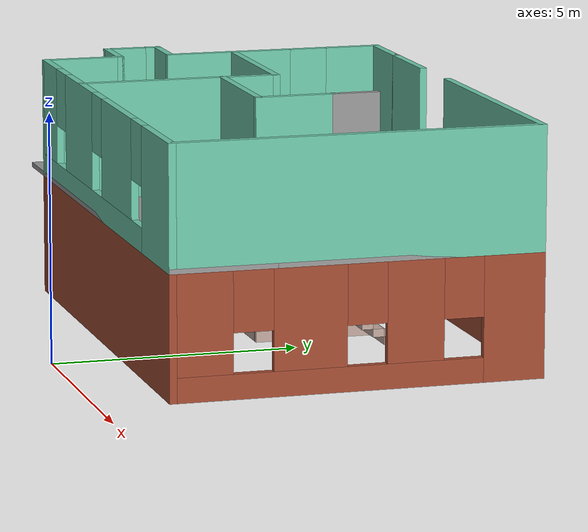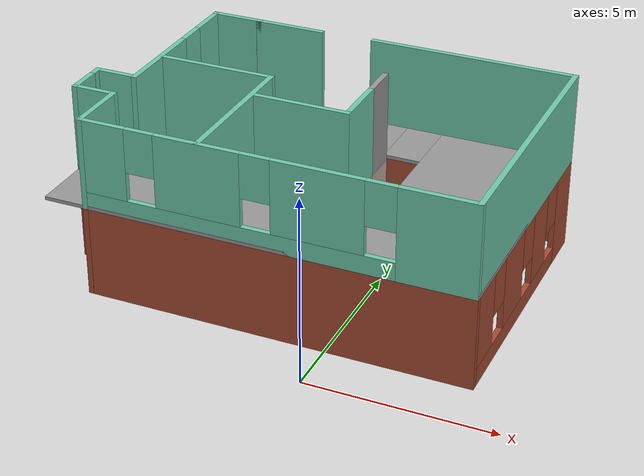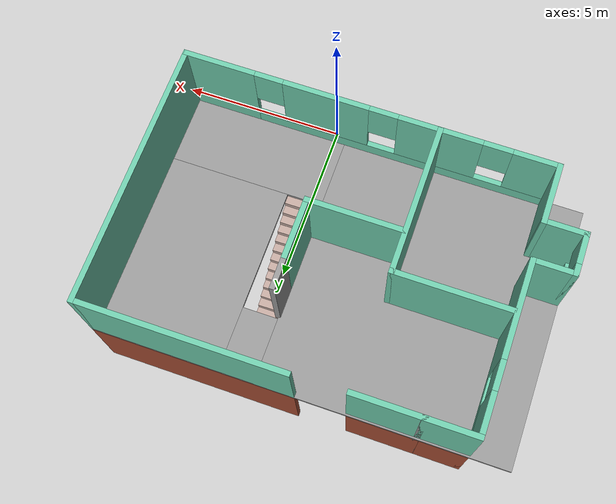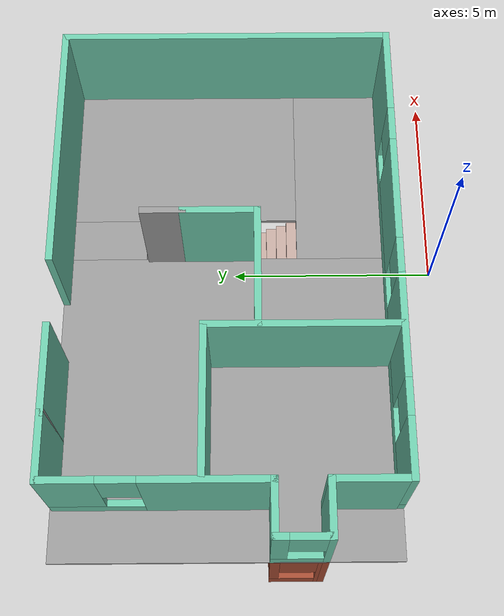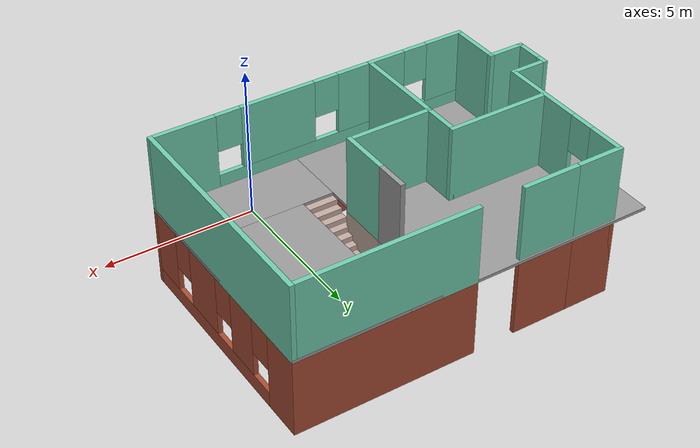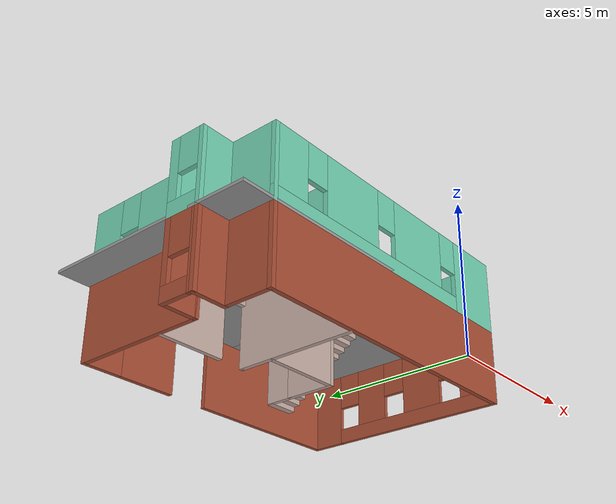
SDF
<?xml version='1.0'?>
<sdf version='1.6'>
  <model name='Building'>
    <pose frame=''>-1.94301 5.12854 0 0 -0 0</pose>
    <link name='Floor_0'>
      <pose frame=''>0 0 2.5 0 -0 0</pose>
      <visual name='Floor_0_Visual_0'>
        <pose frame=''>-2.30226 0 0.05 0 -0 0</pose>
        <geometry>
          <box>
            <size>6.99548 7.5 0.1</size>
          </box>
        </geometry>
        <material>
          <script>
            <uri>file://media/materials/scripts/gazebo.material</uri>
            <name>Gazebo/Grey</name>
          </script>
          <ambient>1 1 1 1</ambient>
        </material>
        <meta>
          <layer>1</layer>
        </meta>
      </visual>
      <collision name='Floor_0_Collision_0'>
        <geometry>
          <box>
            <size>6.99548 7.5 0.1</size>
          </box>
        </geometry>
        <pose frame=''>-2.30226 0 0.05 0 -0 0</pose>
      </collision>
      <visual name='Floor_0_Visual_1'>
        <pose frame=''>3.49774 -2.68126 0.05 0 -0 0</pose>
        <geometry>
          <box>
            <size>4.60452 2.13747 0.1</size>
          </box>
        </geometry>
        <material>
          <script>
            <uri>file://media/materials/scripts/gazebo.material</uri>
            <name>Gazebo/Grey</name>
          </script>
          <ambient>1 1 1 1</ambient>
        </material>
        <meta>
          <layer>1</layer>
        </meta>
      </visual>
      <collision name='Floor_0_Collision_1'>
        <geometry>
          <box>
            <size>4.60452 2.13747 0.1</size>
          </box>
        </geometry>
        <pose frame=''>3.49774 -2.68126 0.05 0 -0 0</pose>
      </collision>
      <visual name='Floor_0_Visual_2'>
        <pose frame=''>3.99774 1.06874 0.05 0 -0 0</pose>
        <geometry>
          <box>
            <size>3.60452 5.36253 0.1</size>
          </box>
        </geometry>
        <material>
          <script>
            <uri>file://media/materials/scripts/gazebo.material</uri>
            <name>Gazebo/Grey</name>
          </script>
          <ambient>1 1 1 1</ambient>
        </material>
        <meta>
          <layer>1</layer>
        </meta>
      </visual>
      <collision name='Floor_0_Collision_2'>
        <geometry>
          <box>
            <size>3.60452 5.36253 0.1</size>
          </box>
        </geometry>
        <pose frame=''>3.99774 1.06874 0.05 0 -0 0</pose>
      </collision>
      <visual name='Floor_0_Visual_3'>
        <pose frame=''>1.69548 2.81874 0.05 0 -0 0</pose>
        <geometry>
          <box>
            <size>1 1.86253 0.1</size>
          </box>
        </geometry>
        <material>
          <script>
            <uri>file://media/materials/scripts/gazebo.material</uri>
            <name>Gazebo/Grey</name>
          </script>
          <ambient>1 1 1 1</ambient>
        </material>
        <meta>
          <layer>1</layer>
        </meta>
      </visual>
      <collision name='Floor_0_Collision_3'>
        <geometry>
          <box>
            <size>1 1.86253 0.1</size>
          </box>
        </geometry>
        <pose frame=''>1.69548 2.81874 0.05 0 -0 0</pose>
      </collision>
    </link>
    <link name='Stairs_1'>
      <visual name='Stairs_1_Visual_0'>
        <pose frame=''>1.69548 1.7708 0.083333 0 -0 0</pose>
        <geometry>
          <box>
            <size>1 0.233333 0.166667</size>
          </box>
        </geometry>
        <material>
          <script>
            <uri>file://media/materials/scripts/gazebo.material</uri>
            <name>Gazebo/Grey</name>
          </script>
          <ambient>0.760784 0.662745 0.627451 1</ambient>
        </material>
        <meta>
          <layer>0</layer>
        </meta>
      </visual>
      <collision name='Stairs_1_Collision_0'>
        <geometry>
          <box>
            <size>1 0.233333 0.166667</size>
          </box>
        </geometry>
        <pose frame=''>1.69548 1.7708 0.083333 0 -0 0</pose>
      </collision>
      <visual name='Stairs_1_Visual_1'>
        <pose frame=''>1.69548 1.53747 0.25 0 -0 0</pose>
        <geometry>
          <box>
            <size>1 0.233333 0.166667</size>
          </box>
        </geometry>
        <material>
          <script>
            <uri>file://media/materials/scripts/gazebo.material</uri>
            <name>Gazebo/Grey</name>
          </script>
          <ambient>0.760784 0.662745 0.627451 1</ambient>
        </material>
        <meta>
          <layer>0</layer>
        </meta>
      </visual>
      <collision name='Stairs_1_Collision_1'>
        <geometry>
          <box>
            <size>1 0.233333 0.166667</size>
          </box>
        </geometry>
        <pose frame=''>1.69548 1.53747 0.25 0 -0 0</pose>
      </collision>
      <visual name='Stairs_1_Visual_2'>
        <pose frame=''>1.69548 1.30414 0.416667 0 -0 0</pose>
        <geometry>
          <box>
            <size>1 0.233333 0.166667</size>
          </box>
        </geometry>
        <material>
          <script>
            <uri>file://media/materials/scripts/gazebo.material</uri>
            <name>Gazebo/Grey</name>
          </script>
          <ambient>0.760784 0.662745 0.627451 1</ambient>
        </material>
        <meta>
          <layer>0</layer>
        </meta>
      </visual>
      <collision name='Stairs_1_Collision_2'>
        <geometry>
          <box>
            <size>1 0.233333 0.166667</size>
          </box>
        </geometry>
        <pose frame=''>1.69548 1.30414 0.416667 0 -0 0</pose>
      </collision>
      <visual name='Stairs_1_Visual_3'>
        <pose frame=''>1.69548 1.07081 0.583333 0 -0 0</pose>
        <geometry>
          <box>
            <size>1 0.233333 0.166667</size>
          </box>
        </geometry>
        <material>
          <script>
            <uri>file://media/materials/scripts/gazebo.material</uri>
            <name>Gazebo/Grey</name>
          </script>
          <ambient>0.760784 0.662745 0.627451 1</ambient>
        </material>
        <meta>
          <layer>0</layer>
        </meta>
      </visual>
      <collision name='Stairs_1_Collision_3'>
        <geometry>
          <box>
            <size>1 0.233333 0.166667</size>
          </box>
        </geometry>
        <pose frame=''>1.69548 1.07081 0.583333 0 -0 0</pose>
      </collision>
      <visual name='Stairs_1_Visual_4'>
        <pose frame=''>1.69548 0.837472 0.75 0 -0 0</pose>
        <geometry>
          <box>
            <size>1 0.233333 0.166667</size>
          </box>
        </geometry>
        <material>
          <script>
            <uri>file://media/materials/scripts/gazebo.material</uri>
            <name>Gazebo/Grey</name>
          </script>
          <ambient>0.760784 0.662745 0.627451 1</ambient>
        </material>
        <meta>
          <layer>0</layer>
        </meta>
      </visual>
      <collision name='Stairs_1_Collision_4'>
        <geometry>
          <box>
            <size>1 0.233333 0.166667</size>
          </box>
        </geometry>
        <pose frame=''>1.69548 0.837472 0.75 0 -0 0</pose>
      </collision>
      <visual name='Stairs_1_Visual_5'>
        <pose frame=''>1.69548 0.604139 0.916667 0 -0 0</pose>
        <geometry>
          <box>
            <size>1 0.233333 0.166667</size>
          </box>
        </geometry>
        <material>
          <script>
            <uri>file://media/materials/scripts/gazebo.material</uri>
            <name>Gazebo/Grey</name>
          </script>
          <ambient>0.760784 0.662745 0.627451 1</ambient>
        </material>
        <meta>
          <layer>0</layer>
        </meta>
      </visual>
      <collision name='Stairs_1_Collision_5'>
        <geometry>
          <box>
            <size>1 0.233333 0.166667</size>
          </box>
        </geometry>
        <pose frame=''>1.69548 0.604139 0.916667 0 -0 0</pose>
      </collision>
      <visual name='Stairs_1_Visual_6'>
        <pose frame=''>1.69548 0.370805 1.08333 0 -0 0</pose>
        <geometry>
          <box>
            <size>1 0.233333 0.166667</size>
          </box>
        </geometry>
        <material>
          <script>
            <uri>file://media/materials/scripts/gazebo.material</uri>
            <name>Gazebo/Grey</name>
          </script>
          <ambient>0.760784 0.662745 0.627451 1</ambient>
        </material>
        <meta>
          <layer>0</layer>
        </meta>
      </visual>
      <collision name='Stairs_1_Collision_6'>
        <geometry>
          <box>
            <size>1 0.233333 0.166667</size>
          </box>
        </geometry>
        <pose frame=''>1.69548 0.370805 1.08333 0 -0 0</pose>
      </collision>
      <visual name='Stairs_1_Visual_7'>
        <pose frame=''>1.69548 0.137472 1.25 0 -0 0</pose>
        <geometry>
          <box>
            <size>1 0.233333 0.166667</size>
          </box>
        </geometry>
        <material>
          <script>
            <uri>file://media/materials/scripts/gazebo.material</uri>
            <name>Gazebo/Grey</name>
          </script>
          <ambient>0.760784 0.662745 0.627451 1</ambient>
        </material>
        <meta>
          <layer>0</layer>
        </meta>
      </visual>
      <collision name='Stairs_1_Collision_7'>
        <geometry>
          <box>
            <size>1 0.233333 0.166667</size>
          </box>
        </geometry>
        <pose frame=''>1.69548 0.137472 1.25 0 -0 0</pose>
      </collision>
      <visual name='Stairs_1_Visual_8'>
        <pose frame=''>1.69548 -0.095861 1.41667 0 -0 0</pose>
        <geometry>
          <box>
            <size>1 0.233333 0.166667</size>
          </box>
        </geometry>
        <material>
          <script>
            <uri>file://media/materials/scripts/gazebo.material</uri>
            <name>Gazebo/Grey</name>
          </script>
          <ambient>0.760784 0.662745 0.627451 1</ambient>
        </material>
        <meta>
          <layer>0</layer>
        </meta>
      </visual>
      <collision name='Stairs_1_Collision_8'>
        <geometry>
          <box>
            <size>1 0.233333 0.166667</size>
          </box>
        </geometry>
        <pose frame=''>1.69548 -0.095861 1.41667 0 -0 0</pose>
      </collision>
      <visual name='Stairs_1_Visual_9'>
        <pose frame=''>1.69548 -0.329195 1.58333 0 -0 0</pose>
        <geometry>
          <box>
            <size>1 0.233333 0.166667</size>
          </box>
        </geometry>
        <material>
          <script>
            <uri>file://media/materials/scripts/gazebo.material</uri>
            <name>Gazebo/Grey</name>
          </script>
          <ambient>0.760784 0.662745 0.627451 1</ambient>
        </material>
        <meta>
          <layer>0</layer>
        </meta>
      </visual>
      <collision name='Stairs_1_Collision_9'>
        <geometry>
          <box>
            <size>1 0.233333 0.166667</size>
          </box>
        </geometry>
        <pose frame=''>1.69548 -0.329195 1.58333 0 -0 0</pose>
      </collision>
      <visual name='Stairs_1_Visual_10'>
        <pose frame=''>1.69548 -0.562528 1.75 0 -0 0</pose>
        <geometry>
          <box>
            <size>1 0.233333 0.166667</size>
          </box>
        </geometry>
        <material>
          <script>
            <uri>file://media/materials/scripts/gazebo.material</uri>
            <name>Gazebo/Grey</name>
          </script>
          <ambient>0.760784 0.662745 0.627451 1</ambient>
        </material>
        <meta>
          <layer>0</layer>
        </meta>
      </visual>
      <collision name='Stairs_1_Collision_10'>
        <geometry>
          <box>
            <size>1 0.233333 0.166667</size>
          </box>
        </geometry>
        <pose frame=''>1.69548 -0.562528 1.75 0 -0 0</pose>
      </collision>
      <visual name='Stairs_1_Visual_11'>
        <pose frame=''>1.69548 -0.795861 1.91667 0 -0 0</pose>
        <geometry>
          <box>
            <size>1 0.233333 0.166667</size>
          </box>
        </geometry>
        <material>
          <script>
            <uri>file://media/materials/scripts/gazebo.material</uri>
            <name>Gazebo/Grey</name>
          </script>
          <ambient>0.760784 0.662745 0.627451 1</ambient>
        </material>
        <meta>
          <layer>0</layer>
        </meta>
      </visual>
      <collision name='Stairs_1_Collision_11'>
        <geometry>
          <box>
            <size>1 0.233333 0.166667</size>
          </box>
        </geometry>
        <pose frame=''>1.69548 -0.795861 1.91667 0 -0 0</pose>
      </collision>
      <visual name='Stairs_1_Visual_12'>
        <pose frame=''>1.69548 -1.02919 2.08333 0 -0 0</pose>
        <geometry>
          <box>
            <size>1 0.233333 0.166667</size>
          </box>
        </geometry>
        <material>
          <script>
            <uri>file://media/materials/scripts/gazebo.material</uri>
            <name>Gazebo/Grey</name>
          </script>
          <ambient>0.760784 0.662745 0.627451 1</ambient>
        </material>
        <meta>
          <layer>0</layer>
        </meta>
      </visual>
      <collision name='Stairs_1_Collision_12'>
        <geometry>
          <box>
            <size>1 0.233333 0.166667</size>
          </box>
        </geometry>
        <pose frame=''>1.69548 -1.02919 2.08333 0 -0 0</pose>
      </collision>
      <visual name='Stairs_1_Visual_13'>
        <pose frame=''>1.69548 -1.26253 2.25 0 -0 0</pose>
        <geometry>
          <box>
            <size>1 0.233333 0.166667</size>
          </box>
        </geometry>
        <material>
          <script>
            <uri>file://media/materials/scripts/gazebo.material</uri>
            <name>Gazebo/Grey</name>
          </script>
          <ambient>0.760784 0.662745 0.627451 1</ambient>
        </material>
        <meta>
          <layer>0</layer>
        </meta>
      </visual>
      <collision name='Stairs_1_Collision_13'>
        <geometry>
          <box>
            <size>1 0.233333 0.166667</size>
          </box>
        </geometry>
        <pose frame=''>1.69548 -1.26253 2.25 0 -0 0</pose>
      </collision>
      <visual name='Stairs_1_Visual_14'>
        <pose frame=''>1.69548 -1.49586 2.41667 0 -0 0</pose>
        <geometry>
          <box>
            <size>1 0.233333 0.166667</size>
          </box>
        </geometry>
        <material>
          <script>
            <uri>file://media/materials/scripts/gazebo.material</uri>
            <name>Gazebo/Grey</name>
          </script>
          <ambient>0.760784 0.662745 0.627451 1</ambient>
        </material>
        <meta>
          <layer>0</layer>
        </meta>
      </visual>
      <collision name='Stairs_1_Collision_14'>
        <geometry>
          <box>
            <size>1 0.233333 0.166667</size>
          </box>
        </geometry>
        <pose frame=''>1.69548 -1.49586 2.41667 0 -0 0</pose>
      </collision>
    </link>
    <link name='Wall_22'>
      <collision name='Wall_22_Collision'>
        <geometry>
          <box>
            <size>5.75 0.15 2.5</size>
          </box>
        </geometry>
        <pose frame=''>0 0 1.25 0 -0 0</pose>
      </collision>
      <visual name='Wall_22_Visual'>
        <pose frame=''>0 0 1.25 0 -0 0</pose>
        <geometry>
          <box>
            <size>5.75 0.15 2.5</size>
          </box>
        </geometry>
        <material>
          <script>
            <uri>file://media/materials/scripts/gazebo.material</uri>
            <name>Gazebo/Bricks</name>
          </script>
          <ambient>1 1 1 1</ambient>
        </material>
        <meta>
          <layer>0</layer>
        </meta>
      </visual>
      <pose frame=''>2.925 3.675 0 0 -0 0</pose>
    </link>
    <link name='Wall_23'>
      <pose frame=''>5.725 0 0 0 0 -1.5708</pose>
      <visual name='Wall_23_Visual_0'>
        <pose frame=''>-3.12794 0 1.25 0 -0 0</pose>
        <geometry>
          <box>
            <size>1.24411 0.15 2.5</size>
          </box>
        </geometry>
        <material>
          <script>
            <uri>file://media/materials/scripts/gazebo.material</uri>
            <name>Gazebo/Bricks</name>
          </script>
          <ambient>1 1 1 1</ambient>
        </material>
        <meta>
          <layer>0</layer>
        </meta>
      </visual>
      <collision name='Wall_23_Collision_0'>
        <geometry>
          <box>
            <size>1.24411 0.15 2.5</size>
          </box>
        </geometry>
        <pose frame=''>-3.12794 0 1.25 0 -0 0</pose>
      </collision>
      <visual name='Wall_23_Visual_1'>
        <pose frame=''>0.622057 0 0.25 0 -0 0</pose>
        <geometry>
          <box>
            <size>6.25589 0.15 0.5</size>
          </box>
        </geometry>
        <material>
          <script>
            <uri>file://media/materials/scripts/gazebo.material</uri>
            <name>Gazebo/Bricks</name>
          </script>
          <ambient>1 1 1 1</ambient>
        </material>
        <meta>
          <layer>0</layer>
        </meta>
      </visual>
      <collision name='Wall_23_Collision_1'>
        <geometry>
          <box>
            <size>6.25589 0.15 0.5</size>
          </box>
        </geometry>
        <pose frame=''>0.622057 0 0.25 0 -0 0</pose>
      </collision>
      <visual name='Wall_23_Visual_2'>
        <pose frame=''>-1.13498 0 1.5 0 -0 0</pose>
        <geometry>
          <box>
            <size>1.14181 0.15 2</size>
          </box>
        </geometry>
        <material>
          <script>
            <uri>file://media/materials/scripts/gazebo.material</uri>
            <name>Gazebo/Bricks</name>
          </script>
          <ambient>1 1 1 1</ambient>
        </material>
        <meta>
          <layer>0</layer>
        </meta>
      </visual>
      <collision name='Wall_23_Collision_2'>
        <geometry>
          <box>
            <size>1.14181 0.15 2</size>
          </box>
        </geometry>
        <pose frame=''>-1.13498 0 1.5 0 -0 0</pose>
      </collision>
      <visual name='Wall_23_Visual_3'>
        <pose frame=''>0.966437 0 1.5 0 -0 0</pose>
        <geometry>
          <box>
            <size>1.46102 0.15 2</size>
          </box>
        </geometry>
        <material>
          <script>
            <uri>file://media/materials/scripts/gazebo.material</uri>
            <name>Gazebo/Bricks</name>
          </script>
          <ambient>1 1 1 1</ambient>
        </material>
        <meta>
          <layer>0</layer>
        </meta>
      </visual>
      <collision name='Wall_23_Collision_3'>
        <geometry>
          <box>
            <size>1.46102 0.15 2</size>
          </box>
        </geometry>
        <pose frame=''>0.966437 0 1.5 0 -0 0</pose>
      </collision>
      <visual name='Wall_23_Visual_4'>
        <pose frame=''>3.12347 0 1.5 0 -0 0</pose>
        <geometry>
          <box>
            <size>1.25306 0.15 2</size>
          </box>
        </geometry>
        <material>
          <script>
            <uri>file://media/materials/scripts/gazebo.material</uri>
            <name>Gazebo/Bricks</name>
          </script>
          <ambient>1 1 1 1</ambient>
        </material>
        <meta>
          <layer>0</layer>
        </meta>
      </visual>
      <collision name='Wall_23_Collision_4'>
        <geometry>
          <box>
            <size>1.25306 0.15 2</size>
          </box>
        </geometry>
        <pose frame=''>3.12347 0 1.5 0 -0 0</pose>
      </collision>
      <visual name='Wall_23_Visual_5'>
        <pose frame=''>-2.10589 0 1.9 0 -0 0</pose>
        <geometry>
          <box>
            <size>0.8 0.15 1.2</size>
          </box>
        </geometry>
        <material>
          <script>
            <uri>file://media/materials/scripts/gazebo.material</uri>
            <name>Gazebo/Bricks</name>
          </script>
          <ambient>1 1 1 1</ambient>
        </material>
        <meta>
          <layer>0</layer>
        </meta>
      </visual>
      <collision name='Wall_23_Collision_5'>
        <geometry>
          <box>
            <size>0.8 0.15 1.2</size>
          </box>
        </geometry>
        <pose frame=''>-2.10589 0 1.9 0 -0 0</pose>
      </collision>
      <visual name='Wall_23_Visual_6'>
        <pose frame=''>-0.164072 0 1.9 0 -0 0</pose>
        <geometry>
          <box>
            <size>0.8 0.15 1.2</size>
          </box>
        </geometry>
        <material>
          <script>
            <uri>file://media/materials/scripts/gazebo.material</uri>
            <name>Gazebo/Bricks</name>
          </script>
          <ambient>1 1 1 1</ambient>
        </material>
        <meta>
          <layer>0</layer>
        </meta>
      </visual>
      <collision name='Wall_23_Collision_6'>
        <geometry>
          <box>
            <size>0.8 0.15 1.2</size>
          </box>
        </geometry>
        <pose frame=''>-0.164072 0 1.9 0 -0 0</pose>
      </collision>
      <visual name='Wall_23_Visual_7'>
        <pose frame=''>2.09694 0 1.9 0 -0 0</pose>
        <geometry>
          <box>
            <size>0.8 0.15 1.2</size>
          </box>
        </geometry>
        <material>
          <script>
            <uri>file://media/materials/scripts/gazebo.material</uri>
            <name>Gazebo/Bricks</name>
          </script>
          <ambient>1 1 1 1</ambient>
        </material>
        <meta>
          <layer>0</layer>
        </meta>
      </visual>
      <collision name='Wall_23_Collision_7'>
        <geometry>
          <box>
            <size>0.8 0.15 1.2</size>
          </box>
        </geometry>
        <pose frame=''>2.09694 0 1.9 0 -0 0</pose>
      </collision>
    </link>
    <link name='Wall_24'>
      <collision name='Wall_24_Collision'>
        <geometry>
          <box>
            <size>10.5 0.15 2.5</size>
          </box>
        </geometry>
        <pose frame=''>0 0 1.25 0 -0 0</pose>
      </collision>
      <visual name='Wall_24_Visual'>
        <pose frame=''>0 0 1.25 0 -0 0</pose>
        <geometry>
          <box>
            <size>10.5 0.15 2.5</size>
          </box>
        </geometry>
        <material>
          <script>
            <uri>file://media/materials/scripts/gazebo.material</uri>
            <name>Gazebo/Bricks</name>
          </script>
          <ambient>1 1 1 1</ambient>
        </material>
        <meta>
          <layer>0</layer>
        </meta>
      </visual>
      <pose frame=''>0.55 -3.675 0 0 -0 3.14159</pose>
    </link>
    <link name='Wall_25'>
      <collision name='Wall_25_Collision'>
        <geometry>
          <box>
            <size>1.75 0.15 2.5</size>
          </box>
        </geometry>
        <pose frame=''>0 0 1.25 0 -0 0</pose>
      </collision>
      <visual name='Wall_25_Visual'>
        <pose frame=''>0 0 1.25 0 -0 0</pose>
        <geometry>
          <box>
            <size>1.75 0.15 2.5</size>
          </box>
        </geometry>
        <material>
          <script>
            <uri>file://media/materials/scripts/gazebo.material</uri>
            <name>Gazebo/Bricks</name>
          </script>
          <ambient>1 1 1 1</ambient>
        </material>
        <meta>
          <layer>0</layer>
        </meta>
      </visual>
      <pose frame=''>-4.625 -2.875 0 0 -0 1.5708</pose>
    </link>
    <link name='Wall_26'>
      <collision name='Wall_26_Collision'>
        <geometry>
          <box>
            <size>1.25 0.15 2.5</size>
          </box>
        </geometry>
        <pose frame=''>0 0 1.25 0 -0 0</pose>
      </collision>
      <visual name='Wall_26_Visual'>
        <pose frame=''>0 0 1.25 0 -0 0</pose>
        <geometry>
          <box>
            <size>1.25 0.15 2.5</size>
          </box>
        </geometry>
        <material>
          <script>
            <uri>file://media/materials/scripts/gazebo.material</uri>
            <name>Gazebo/Bricks</name>
          </script>
          <ambient>1 1 1 1</ambient>
        </material>
        <meta>
          <layer>0</layer>
        </meta>
      </visual>
      <pose frame=''>-5.175 -2.075 0 0 -0 3.14159</pose>
    </link>
    <link name='Wall_28'>
      <pose frame=''>-5.725 -1.525 0 0 -0 1.5708</pose>
      <visual name='Wall_28_Visual_0'>
        <pose frame=''>-0.507151 0 1.25 0 -0 0</pose>
        <geometry>
          <box>
            <size>0.235698 0.15 2.5</size>
          </box>
        </geometry>
        <material>
          <script>
            <uri>file://media/materials/scripts/gazebo.material</uri>
            <name>Gazebo/Bricks</name>
          </script>
          <ambient>1 1 1 1</ambient>
        </material>
        <meta>
          <layer>0</layer>
        </meta>
      </visual>
      <collision name='Wall_28_Collision_0'>
        <geometry>
          <box>
            <size>0.235698 0.15 2.5</size>
          </box>
        </geometry>
        <pose frame=''>-0.507151 0 1.25 0 -0 0</pose>
      </collision>
      <visual name='Wall_28_Visual_1'>
        <pose frame=''>0.117849 0 0.25 0 -0 0</pose>
        <geometry>
          <box>
            <size>1.0143 0.15 0.5</size>
          </box>
        </geometry>
        <material>
          <script>
            <uri>file://media/materials/scripts/gazebo.material</uri>
            <name>Gazebo/Bricks</name>
          </script>
          <ambient>1 1 1 1</ambient>
        </material>
        <meta>
          <layer>0</layer>
        </meta>
      </visual>
      <collision name='Wall_28_Collision_1'>
        <geometry>
          <box>
            <size>1.0143 0.15 0.5</size>
          </box>
        </geometry>
        <pose frame=''>0.117849 0 0.25 0 -0 0</pose>
      </collision>
      <visual name='Wall_28_Visual_2'>
        <pose frame=''>0.517849 0 1.5 0 -0 0</pose>
        <geometry>
          <box>
            <size>0.214302 0.15 2</size>
          </box>
        </geometry>
        <material>
          <script>
            <uri>file://media/materials/scripts/gazebo.material</uri>
            <name>Gazebo/Bricks</name>
          </script>
          <ambient>1 1 1 1</ambient>
        </material>
        <meta>
          <layer>0</layer>
        </meta>
      </visual>
      <collision name='Wall_28_Collision_2'>
        <geometry>
          <box>
            <size>0.214302 0.15 2</size>
          </box>
        </geometry>
        <pose frame=''>0.517849 0 1.5 0 -0 0</pose>
      </collision>
      <visual name='Wall_28_Visual_3'>
        <pose frame=''>0.010698 0 1.9 0 -0 0</pose>
        <geometry>
          <box>
            <size>0.8 0.15 1.2</size>
          </box>
        </geometry>
        <material>
          <script>
            <uri>file://media/materials/scripts/gazebo.material</uri>
            <name>Gazebo/Bricks</name>
          </script>
          <ambient>1 1 1 1</ambient>
        </material>
        <meta>
          <layer>0</layer>
        </meta>
      </visual>
      <collision name='Wall_28_Collision_3'>
        <geometry>
          <box>
            <size>0.8 0.15 1.2</size>
          </box>
        </geometry>
        <pose frame=''>0.010698 0 1.9 0 -0 0</pose>
      </collision>
    </link>
    <link name='Wall_29'>
      <collision name='Wall_29_Collision'>
        <geometry>
          <box>
            <size>1.25 0.15 2.5</size>
          </box>
        </geometry>
        <pose frame=''>0 0 1.25 0 -0 0</pose>
      </collision>
      <visual name='Wall_29_Visual'>
        <pose frame=''>0 0 1.25 0 -0 0</pose>
        <geometry>
          <box>
            <size>1.25 0.15 2.5</size>
          </box>
        </geometry>
        <material>
          <script>
            <uri>file://media/materials/scripts/gazebo.material</uri>
            <name>Gazebo/Bricks</name>
          </script>
          <ambient>1 1 1 1</ambient>
        </material>
        <meta>
          <layer>0</layer>
        </meta>
      </visual>
      <pose frame=''>-5.175 -0.975 0 0 -0 0</pose>
    </link>
    <link name='Wall_31'>
      <collision name='Wall_31_Collision'>
        <geometry>
          <box>
            <size>4.75 0.15 2.5</size>
          </box>
        </geometry>
        <pose frame=''>0 0 1.25 0 -0 0</pose>
      </collision>
      <visual name='Wall_31_Visual'>
        <pose frame=''>0 0 1.25 0 -0 0</pose>
        <geometry>
          <box>
            <size>4.75 0.15 2.5</size>
          </box>
        </geometry>
        <material>
          <script>
            <uri>file://media/materials/scripts/gazebo.material</uri>
            <name>Gazebo/Bricks</name>
          </script>
          <ambient>0.760784 0.662745 0.627451 1</ambient>
        </material>
        <meta>
          <layer>0</layer>
        </meta>
      </visual>
      <pose frame=''>-4.625 1.325 0 0 -0 1.5708</pose>
    </link>
    <link name='Wall_32'>
      <collision name='Wall_32_Collision'>
        <geometry>
          <box>
            <size>1.5 0.15 2.5</size>
          </box>
        </geometry>
        <pose frame=''>0 0 1.25 0 -0 0</pose>
      </collision>
      <visual name='Wall_32_Visual'>
        <pose frame=''>0 0 1.25 0 -0 0</pose>
        <geometry>
          <box>
            <size>1.5 0.15 2.5</size>
          </box>
        </geometry>
        <material>
          <script>
            <uri>file://media/materials/scripts/gazebo.material</uri>
            <name>Gazebo/Bricks</name>
          </script>
          <ambient>1 1 1 1</ambient>
        </material>
        <meta>
          <layer>0</layer>
        </meta>
      </visual>
      <pose frame=''>-3.95 3.625 0 0 -0 0</pose>
    </link>
    <link name='Wall_33'>
      <collision name='Wall_33_Collision'>
        <geometry>
          <box>
            <size>0.16 0.15 2.5</size>
          </box>
        </geometry>
        <pose frame=''>0 0 1.25 0 -0 0</pose>
      </collision>
      <visual name='Wall_33_Visual'>
        <pose frame=''>0 0 1.25 0 -0 0</pose>
        <geometry>
          <box>
            <size>0.16 0.15 2.5</size>
          </box>
        </geometry>
        <material>
          <script>
            <uri>file://media/materials/scripts/gazebo.material</uri>
            <name>Gazebo/Grey</name>
          </script>
          <ambient>1 1 1 1</ambient>
        </material>
        <meta>
          <layer>0</layer>
        </meta>
      </visual>
      <pose frame=''>-3.27 3.625 0 0 -0 0</pose>
    </link>
    <link name='Wall_35'>
      <collision name='Wall_35_Collision'>
        <geometry>
          <box>
            <size>2 0.15 2.5</size>
          </box>
        </geometry>
        <pose frame=''>0 0 1.25 0 -0 0</pose>
      </collision>
      <visual name='Wall_35_Visual'>
        <pose frame=''>0 0 1.25 0 -0 0</pose>
        <geometry>
          <box>
            <size>2 0.15 2.5</size>
          </box>
        </geometry>
        <material>
          <script>
            <uri>file://media/materials/scripts/gazebo.material</uri>
            <name>Gazebo/Bricks</name>
          </script>
          <ambient>1 1 1 1</ambient>
        </material>
        <meta>
          <layer>0</layer>
        </meta>
      </visual>
      <pose frame=''>-2.35 3.625 0 0 -0 0</pose>
    </link>
    <link name='Wall_37'>
      <collision name='Wall_37_Collision'>
        <geometry>
          <box>
            <size>4.25 0.15 2.5</size>
          </box>
        </geometry>
        <pose frame=''>0 0 1.25 0 -0 0</pose>
      </collision>
      <visual name='Wall_37_Visual'>
        <pose frame=''>0 0 1.25 0 -0 0</pose>
        <geometry>
          <box>
            <size>4.25 0.15 2.5</size>
          </box>
        </geometry>
        <material>
          <script>
            <uri>file://media/materials/scripts/gazebo.material</uri>
            <name>Gazebo/Grey</name>
          </script>
          <ambient>0.760784 0.662745 0.627451 1</ambient>
        </material>
        <meta>
          <layer>0</layer>
        </meta>
      </visual>
      <pose frame=''>-1.41675 -1.61636 0 0 -0 1.5708</pose>
    </link>
    <link name='Wall_38'>
      <pose frame=''>-2.96675 0.433644 0 0 -0 3.14159</pose>
      <visual name='Wall_38_Visual_0'>
        <pose frame=''>-1.5864 0 1.25 0 -0 0</pose>
        <geometry>
          <box>
            <size>0.077204 0.15 2.5</size>
          </box>
        </geometry>
        <material>
          <script>
            <uri>file://media/materials/scripts/gazebo.material</uri>
            <name>Gazebo/Grey</name>
          </script>
          <ambient>0.760784 0.662745 0.627451 1</ambient>
        </material>
        <meta>
          <layer>0</layer>
        </meta>
      </visual>
      <collision name='Wall_38_Collision_0'>
        <geometry>
          <box>
            <size>0.077204 0.15 2.5</size>
          </box>
        </geometry>
        <pose frame=''>-1.5864 0 1.25 0 -0 0</pose>
      </collision>
      <visual name='Wall_38_Visual_1'>
        <pose frame=''>0.488602 0 1.25 0 -0 0</pose>
        <geometry>
          <box>
            <size>2.2728 0.15 2.5</size>
          </box>
        </geometry>
        <material>
          <script>
            <uri>file://media/materials/scripts/gazebo.material</uri>
            <name>Gazebo/Grey</name>
          </script>
          <ambient>0.760784 0.662745 0.627451 1</ambient>
        </material>
        <meta>
          <layer>0</layer>
        </meta>
      </visual>
      <collision name='Wall_38_Collision_1'>
        <geometry>
          <box>
            <size>2.2728 0.15 2.5</size>
          </box>
        </geometry>
        <pose frame=''>0.488602 0 1.25 0 -0 0</pose>
      </collision>
      <visual name='Wall_38_Visual_2'>
        <pose frame=''>-1.0978 0 2.25 0 -0 0</pose>
        <geometry>
          <box>
            <size>0.9 0.15 0.5</size>
          </box>
        </geometry>
        <material>
          <script>
            <uri>file://media/materials/scripts/gazebo.material</uri>
            <name>Gazebo/Grey</name>
          </script>
          <ambient>0.760784 0.662745 0.627451 1</ambient>
        </material>
        <meta>
          <layer>0</layer>
        </meta>
      </visual>
      <collision name='Wall_38_Collision_2'>
        <geometry>
          <box>
            <size>0.9 0.15 0.5</size>
          </box>
        </geometry>
        <pose frame=''>-1.0978 0 2.25 0 -0 0</pose>
      </collision>
    </link>
    <link name='Wall_40'>
      <collision name='Wall_40_Collision'>
        <geometry>
          <box>
            <size>2.75 0.15 2.5</size>
          </box>
        </geometry>
        <pose frame=''>0 0 1.25 0 -0 0</pose>
      </collision>
      <visual name='Wall_40_Visual'>
        <pose frame=''>0 0 1.25 0 -0 0</pose>
        <geometry>
          <box>
            <size>2.75 0.15 2.5</size>
          </box>
        </geometry>
        <material>
          <script>
            <uri>file://media/materials/scripts/gazebo.material</uri>
            <name>Gazebo/Grey</name>
          </script>
          <ambient>0.760784 0.662745 0.627451 1</ambient>
        </material>
        <meta>
          <layer>0</layer>
        </meta>
      </visual>
      <pose frame=''>-0.090148 -0.687134 0 0 -0 0</pose>
    </link>
    <link name='Wall_41'>
      <collision name='Wall_41_Collision'>
        <geometry>
          <box>
            <size>1.75 0.15 2.5</size>
          </box>
        </geometry>
        <pose frame=''>0 0 1.25 0 -0 0</pose>
      </collision>
      <visual name='Wall_41_Visual'>
        <pose frame=''>0 0 1.25 0 -0 0</pose>
        <geometry>
          <box>
            <size>1.75 0.15 2.5</size>
          </box>
        </geometry>
        <material>
          <script>
            <uri>file://media/materials/scripts/gazebo.material</uri>
            <name>Gazebo/Grey</name>
          </script>
          <ambient>0.760784 0.662745 0.627451 1</ambient>
        </material>
        <meta>
          <layer>0</layer>
        </meta>
      </visual>
      <pose frame=''>1.20985 0.112866 0 0 -0 1.5708</pose>
    </link>
    <link name='Wall_42'>
      <collision name='Wall_42_Collision'>
        <geometry>
          <box>
            <size>1 0.15 2.5</size>
          </box>
        </geometry>
        <pose frame=''>0 0 1.25 0 -0 0</pose>
      </collision>
      <visual name='Wall_42_Visual'>
        <pose frame=''>0 0 1.25 0 -0 0</pose>
        <geometry>
          <box>
            <size>1 0.15 2.5</size>
          </box>
        </geometry>
        <material>
          <script>
            <uri>file://media/materials/scripts/gazebo.material</uri>
            <name>Gazebo/Grey</name>
          </script>
          <ambient>0.760784 0.662745 0.627451 1</ambient>
        </material>
        <meta>
          <layer>0</layer>
        </meta>
      </visual>
      <pose frame=''>1.20985 1.33787 0 0 -0 1.5708</pose>
    </link>
    <link name='Wall_44'>
      <collision name='Wall_44_Collision'>
        <geometry>
          <box>
            <size>5.75 0.15 2.5</size>
          </box>
        </geometry>
        <pose frame=''>0 0 1.25 0 -0 0</pose>
      </collision>
      <visual name='Wall_44_Visual'>
        <pose frame=''>0 0 1.25 0 -0 0</pose>
        <geometry>
          <box>
            <size>5.75 0.15 2.5</size>
          </box>
        </geometry>
        <material>
          <script>
            <uri>file://media/materials/scripts/gazebo.material</uri>
            <name>Gazebo/Grey</name>
          </script>
          <ambient>0.435294 0.796078 0.67451 1</ambient>
        </material>
        <meta>
          <layer>1</layer>
        </meta>
      </visual>
      <pose frame=''>2.925 3.675 2.5 0 -0 0</pose>
    </link>
    <link name='Wall_45'>
      <collision name='Wall_45_Collision'>
        <geometry>
          <box>
            <size>7.5 0.15 2.5</size>
          </box>
        </geometry>
        <pose frame=''>0 0 1.25 0 -0 0</pose>
      </collision>
      <visual name='Wall_45_Visual'>
        <pose frame=''>0 0 1.25 0 -0 0</pose>
        <geometry>
          <box>
            <size>7.5 0.15 2.5</size>
          </box>
        </geometry>
        <material>
          <script>
            <uri>file://media/materials/scripts/gazebo.material</uri>
            <name>Gazebo/Grey</name>
          </script>
          <ambient>0.435294 0.796078 0.67451 1</ambient>
        </material>
        <meta>
          <layer>1</layer>
        </meta>
      </visual>
      <pose frame=''>5.725 0 2.5 0 0 -1.5708</pose>
    </link>
    <link name='Wall_46'>
      <pose frame=''>0.55 -3.675 2.5 0 -0 3.14159</pose>
      <visual name='Wall_46_Visual_0'>
        <pose frame=''>-4.22234 0 1.25 0 -0 0</pose>
        <geometry>
          <box>
            <size>2.05531 0.15 2.5</size>
          </box>
        </geometry>
        <material>
          <script>
            <uri>file://media/materials/scripts/gazebo.material</uri>
            <name>Gazebo/Grey</name>
          </script>
          <ambient>0.435294 0.796078 0.67451 1</ambient>
        </material>
        <meta>
          <layer>1</layer>
        </meta>
      </visual>
      <collision name='Wall_46_Collision_0'>
        <geometry>
          <box>
            <size>2.05531 0.15 2.5</size>
          </box>
        </geometry>
        <pose frame=''>-4.22234 0 1.25 0 -0 0</pose>
      </collision>
      <visual name='Wall_46_Visual_1'>
        <pose frame=''>1.02766 0 0.25 0 -0 0</pose>
        <geometry>
          <box>
            <size>8.44469 0.15 0.5</size>
          </box>
        </geometry>
        <material>
          <script>
            <uri>file://media/materials/scripts/gazebo.material</uri>
            <name>Gazebo/Grey</name>
          </script>
          <ambient>0.435294 0.796078 0.67451 1</ambient>
        </material>
        <meta>
          <layer>1</layer>
        </meta>
      </visual>
      <collision name='Wall_46_Collision_1'>
        <geometry>
          <box>
            <size>8.44469 0.15 0.5</size>
          </box>
        </geometry>
        <pose frame=''>1.02766 0 0.25 0 -0 0</pose>
      </collision>
      <visual name='Wall_46_Visual_2'>
        <pose frame=''>-1.18538 0 1.5 0 -0 0</pose>
        <geometry>
          <box>
            <size>2.41862 0.15 2</size>
          </box>
        </geometry>
        <material>
          <script>
            <uri>file://media/materials/scripts/gazebo.material</uri>
            <name>Gazebo/Grey</name>
          </script>
          <ambient>0.435294 0.796078 0.67451 1</ambient>
        </material>
        <meta>
          <layer>1</layer>
        </meta>
      </visual>
      <collision name='Wall_46_Collision_2'>
        <geometry>
          <box>
            <size>2.41862 0.15 2</size>
          </box>
        </geometry>
        <pose frame=''>-1.18538 0 1.5 0 -0 0</pose>
      </collision>
      <visual name='Wall_46_Visual_3'>
        <pose frame=''>1.98005 0 1.5 0 -0 0</pose>
        <geometry>
          <box>
            <size>2.31222 0.15 2</size>
          </box>
        </geometry>
        <material>
          <script>
            <uri>file://media/materials/scripts/gazebo.material</uri>
            <name>Gazebo/Grey</name>
          </script>
          <ambient>0.435294 0.796078 0.67451 1</ambient>
        </material>
        <meta>
          <layer>1</layer>
        </meta>
      </visual>
      <collision name='Wall_46_Collision_3'>
        <geometry>
          <box>
            <size>2.31222 0.15 2</size>
          </box>
        </geometry>
        <pose frame=''>1.98005 0 1.5 0 -0 0</pose>
      </collision>
      <visual name='Wall_46_Visual_4'>
        <pose frame=''>4.59308 0 1.5 0 -0 0</pose>
        <geometry>
          <box>
            <size>1.31384 0.15 2</size>
          </box>
        </geometry>
        <material>
          <script>
            <uri>file://media/materials/scripts/gazebo.material</uri>
            <name>Gazebo/Grey</name>
          </script>
          <ambient>0.435294 0.796078 0.67451 1</ambient>
        </material>
        <meta>
          <layer>1</layer>
        </meta>
      </visual>
      <collision name='Wall_46_Collision_4'>
        <geometry>
          <box>
            <size>1.31384 0.15 2</size>
          </box>
        </geometry>
        <pose frame=''>4.59308 0 1.5 0 -0 0</pose>
      </collision>
      <visual name='Wall_46_Visual_5'>
        <pose frame=''>-2.79469 0 1.9 0 -0 0</pose>
        <geometry>
          <box>
            <size>0.8 0.15 1.2</size>
          </box>
        </geometry>
        <material>
          <script>
            <uri>file://media/materials/scripts/gazebo.material</uri>
            <name>Gazebo/Grey</name>
          </script>
          <ambient>0.435294 0.796078 0.67451 1</ambient>
        </material>
        <meta>
          <layer>1</layer>
        </meta>
      </visual>
      <collision name='Wall_46_Collision_5'>
        <geometry>
          <box>
            <size>0.8 0.15 1.2</size>
          </box>
        </geometry>
        <pose frame=''>-2.79469 0 1.9 0 -0 0</pose>
      </collision>
      <visual name='Wall_46_Visual_6'>
        <pose frame=''>0.423936 0 1.9 0 -0 0</pose>
        <geometry>
          <box>
            <size>0.8 0.15 1.2</size>
          </box>
        </geometry>
        <material>
          <script>
            <uri>file://media/materials/scripts/gazebo.material</uri>
            <name>Gazebo/Grey</name>
          </script>
          <ambient>0.435294 0.796078 0.67451 1</ambient>
        </material>
        <meta>
          <layer>1</layer>
        </meta>
      </visual>
      <collision name='Wall_46_Collision_6'>
        <geometry>
          <box>
            <size>0.8 0.15 1.2</size>
          </box>
        </geometry>
        <pose frame=''>0.423936 0 1.9 0 -0 0</pose>
      </collision>
      <visual name='Wall_46_Visual_7'>
        <pose frame=''>3.53616 0 1.9 0 -0 0</pose>
        <geometry>
          <box>
            <size>0.8 0.15 1.2</size>
          </box>
        </geometry>
        <material>
          <script>
            <uri>file://media/materials/scripts/gazebo.material</uri>
            <name>Gazebo/Grey</name>
          </script>
          <ambient>0.435294 0.796078 0.67451 1</ambient>
        </material>
        <meta>
          <layer>1</layer>
        </meta>
      </visual>
      <collision name='Wall_46_Collision_7'>
        <geometry>
          <box>
            <size>0.8 0.15 1.2</size>
          </box>
        </geometry>
        <pose frame=''>3.53616 0 1.9 0 -0 0</pose>
      </collision>
    </link>
    <link name='Wall_47'>
      <collision name='Wall_47_Collision'>
        <geometry>
          <box>
            <size>1.75 0.15 2.5</size>
          </box>
        </geometry>
        <pose frame=''>0 0 1.25 0 -0 0</pose>
      </collision>
      <visual name='Wall_47_Visual'>
        <pose frame=''>0 0 1.25 0 -0 0</pose>
        <geometry>
          <box>
            <size>1.75 0.15 2.5</size>
          </box>
        </geometry>
        <material>
          <script>
            <uri>file://media/materials/scripts/gazebo.material</uri>
            <name>Gazebo/Grey</name>
          </script>
          <ambient>0.435294 0.796078 0.67451 1</ambient>
        </material>
        <meta>
          <layer>1</layer>
        </meta>
      </visual>
      <pose frame=''>-4.625 -2.875 2.5 0 -0 1.5708</pose>
    </link>
    <link name='Wall_48'>
      <collision name='Wall_48_Collision'>
        <geometry>
          <box>
            <size>1.25 0.15 2.5</size>
          </box>
        </geometry>
        <pose frame=''>0 0 1.25 0 -0 0</pose>
      </collision>
      <visual name='Wall_48_Visual'>
        <pose frame=''>0 0 1.25 0 -0 0</pose>
        <geometry>
          <box>
            <size>1.25 0.15 2.5</size>
          </box>
        </geometry>
        <material>
          <script>
            <uri>file://media/materials/scripts/gazebo.material</uri>
            <name>Gazebo/Grey</name>
          </script>
          <ambient>0.435294 0.796078 0.67451 1</ambient>
        </material>
        <meta>
          <layer>1</layer>
        </meta>
      </visual>
      <pose frame=''>-5.175 -2.075 2.5 0 -0 3.14159</pose>
    </link>
    <link name='Wall_49'>
      <pose frame=''>-5.725 -1.525 2.5 0 -0 1.5708</pose>
      <visual name='Wall_49_Visual_0'>
        <pose frame=''>-0.572371 0 1.25 0 -0 0</pose>
        <geometry>
          <box>
            <size>0.105258 0.15 2.5</size>
          </box>
        </geometry>
        <material>
          <script>
            <uri>file://media/materials/scripts/gazebo.material</uri>
            <name>Gazebo/Grey</name>
          </script>
          <ambient>0.435294 0.796078 0.67451 1</ambient>
        </material>
        <meta>
          <layer>1</layer>
        </meta>
      </visual>
      <collision name='Wall_49_Collision_0'>
        <geometry>
          <box>
            <size>0.105258 0.15 2.5</size>
          </box>
        </geometry>
        <pose frame=''>-0.572371 0 1.25 0 -0 0</pose>
      </collision>
      <visual name='Wall_49_Visual_1'>
        <pose frame=''>0.052629 0 0.25 0 -0 0</pose>
        <geometry>
          <box>
            <size>1.14474 0.15 0.5</size>
          </box>
        </geometry>
        <material>
          <script>
            <uri>file://media/materials/scripts/gazebo.material</uri>
            <name>Gazebo/Grey</name>
          </script>
          <ambient>0.435294 0.796078 0.67451 1</ambient>
        </material>
        <meta>
          <layer>1</layer>
        </meta>
      </visual>
      <collision name='Wall_49_Collision_1'>
        <geometry>
          <box>
            <size>1.14474 0.15 0.5</size>
          </box>
        </geometry>
        <pose frame=''>0.052629 0 0.25 0 -0 0</pose>
      </collision>
      <visual name='Wall_49_Visual_2'>
        <pose frame=''>0.452629 0 1.5 0 -0 0</pose>
        <geometry>
          <box>
            <size>0.344742 0.15 2</size>
          </box>
        </geometry>
        <material>
          <script>
            <uri>file://media/materials/scripts/gazebo.material</uri>
            <name>Gazebo/Grey</name>
          </script>
          <ambient>0.435294 0.796078 0.67451 1</ambient>
        </material>
        <meta>
          <layer>1</layer>
        </meta>
      </visual>
      <collision name='Wall_49_Collision_2'>
        <geometry>
          <box>
            <size>0.344742 0.15 2</size>
          </box>
        </geometry>
        <pose frame=''>0.452629 0 1.5 0 -0 0</pose>
      </collision>
      <visual name='Wall_49_Visual_3'>
        <pose frame=''>-0.119742 0 1.9 0 -0 0</pose>
        <geometry>
          <box>
            <size>0.8 0.15 1.2</size>
          </box>
        </geometry>
        <material>
          <script>
            <uri>file://media/materials/scripts/gazebo.material</uri>
            <name>Gazebo/Grey</name>
          </script>
          <ambient>0.435294 0.796078 0.67451 1</ambient>
        </material>
        <meta>
          <layer>1</layer>
        </meta>
      </visual>
      <collision name='Wall_49_Collision_3'>
        <geometry>
          <box>
            <size>0.8 0.15 1.2</size>
          </box>
        </geometry>
        <pose frame=''>-0.119742 0 1.9 0 -0 0</pose>
      </collision>
    </link>
    <link name='Wall_50'>
      <collision name='Wall_50_Collision'>
        <geometry>
          <box>
            <size>1.25 0.15 2.5</size>
          </box>
        </geometry>
        <pose frame=''>0 0 1.25 0 -0 0</pose>
      </collision>
      <visual name='Wall_50_Visual'>
        <pose frame=''>0 0 1.25 0 -0 0</pose>
        <geometry>
          <box>
            <size>1.25 0.15 2.5</size>
          </box>
        </geometry>
        <material>
          <script>
            <uri>file://media/materials/scripts/gazebo.material</uri>
            <name>Gazebo/Grey</name>
          </script>
          <ambient>0.435294 0.796078 0.67451 1</ambient>
        </material>
        <meta>
          <layer>1</layer>
        </meta>
      </visual>
      <pose frame=''>-5.175 -0.975 2.5 0 -0 0</pose>
    </link>
    <link name='Wall_51'>
      <pose frame=''>-4.625 1.325 2.5 0 -0 1.5708</pose>
      <visual name='Wall_51_Visual_0'>
        <pose frame=''>-1.01036 0 1.25 0 -0 0</pose>
        <geometry>
          <box>
            <size>2.72929 0.15 2.5</size>
          </box>
        </geometry>
        <material>
          <script>
            <uri>file://media/materials/scripts/gazebo.material</uri>
            <name>Gazebo/Grey</name>
          </script>
          <ambient>0.435294 0.796078 0.67451 1</ambient>
        </material>
        <meta>
          <layer>1</layer>
        </meta>
      </visual>
      <collision name='Wall_51_Collision_0'>
        <geometry>
          <box>
            <size>2.72929 0.15 2.5</size>
          </box>
        </geometry>
        <pose frame=''>-1.01036 0 1.25 0 -0 0</pose>
      </collision>
      <visual name='Wall_51_Visual_1'>
        <pose frame=''>1.36464 0 0.25 0 -0 0</pose>
        <geometry>
          <box>
            <size>2.02071 0.15 0.5</size>
          </box>
        </geometry>
        <material>
          <script>
            <uri>file://media/materials/scripts/gazebo.material</uri>
            <name>Gazebo/Grey</name>
          </script>
          <ambient>0.435294 0.796078 0.67451 1</ambient>
        </material>
        <meta>
          <layer>1</layer>
        </meta>
      </visual>
      <collision name='Wall_51_Collision_1'>
        <geometry>
          <box>
            <size>2.02071 0.15 0.5</size>
          </box>
        </geometry>
        <pose frame=''>1.36464 0 0.25 0 -0 0</pose>
      </collision>
      <visual name='Wall_51_Visual_2'>
        <pose frame=''>1.76464 0 1.5 0 -0 0</pose>
        <geometry>
          <box>
            <size>1.22071 0.15 2</size>
          </box>
        </geometry>
        <material>
          <script>
            <uri>file://media/materials/scripts/gazebo.material</uri>
            <name>Gazebo/Grey</name>
          </script>
          <ambient>0.435294 0.796078 0.67451 1</ambient>
        </material>
        <meta>
          <layer>1</layer>
        </meta>
      </visual>
      <collision name='Wall_51_Collision_2'>
        <geometry>
          <box>
            <size>1.22071 0.15 2</size>
          </box>
        </geometry>
        <pose frame=''>1.76464 0 1.5 0 -0 0</pose>
      </collision>
      <visual name='Wall_51_Visual_3'>
        <pose frame=''>0.754287 0 1.9 0 -0 0</pose>
        <geometry>
          <box>
            <size>0.8 0.15 1.2</size>
          </box>
        </geometry>
        <material>
          <script>
            <uri>file://media/materials/scripts/gazebo.material</uri>
            <name>Gazebo/Grey</name>
          </script>
          <ambient>0.435294 0.796078 0.67451 1</ambient>
        </material>
        <meta>
          <layer>1</layer>
        </meta>
      </visual>
      <collision name='Wall_51_Collision_3'>
        <geometry>
          <box>
            <size>0.8 0.15 1.2</size>
          </box>
        </geometry>
        <pose frame=''>0.754287 0 1.9 0 -0 0</pose>
      </collision>
    </link>
    <link name='Wall_52'>
      <collision name='Wall_52_Collision'>
        <geometry>
          <box>
            <size>1.5 0.15 2.5</size>
          </box>
        </geometry>
        <pose frame=''>0 0 1.25 0 -0 0</pose>
      </collision>
      <visual name='Wall_52_Visual'>
        <pose frame=''>0 0 1.25 0 -0 0</pose>
        <geometry>
          <box>
            <size>1.5 0.15 2.5</size>
          </box>
        </geometry>
        <material>
          <script>
            <uri>file://media/materials/scripts/gazebo.material</uri>
            <name>Gazebo/Grey</name>
          </script>
          <ambient>0.435294 0.796078 0.67451 1</ambient>
        </material>
        <meta>
          <layer>1</layer>
        </meta>
      </visual>
      <pose frame=''>-3.95 3.625 2.5 0 -0 0</pose>
    </link>
    <link name='Wall_53'>
      <collision name='Wall_53_Collision'>
        <geometry>
          <box>
            <size>0.16 0.15 2.5</size>
          </box>
        </geometry>
        <pose frame=''>0 0 1.25 0 -0 0</pose>
      </collision>
      <visual name='Wall_53_Visual'>
        <pose frame=''>0 0 1.25 0 -0 0</pose>
        <geometry>
          <box>
            <size>0.16 0.15 2.5</size>
          </box>
        </geometry>
        <material>
          <script>
            <uri>file://media/materials/scripts/gazebo.material</uri>
            <name>Gazebo/Grey</name>
          </script>
          <ambient>1 1 1 1</ambient>
        </material>
        <meta>
          <layer>1</layer>
        </meta>
      </visual>
      <pose frame=''>-3.27 3.625 2.5 0 -0 0</pose>
    </link>
    <link name='Wall_54'>
      <collision name='Wall_54_Collision'>
        <geometry>
          <box>
            <size>2 0.15 2.5</size>
          </box>
        </geometry>
        <pose frame=''>0 0 1.25 0 -0 0</pose>
      </collision>
      <visual name='Wall_54_Visual'>
        <pose frame=''>0 0 1.25 0 -0 0</pose>
        <geometry>
          <box>
            <size>2 0.15 2.5</size>
          </box>
        </geometry>
        <material>
          <script>
            <uri>file://media/materials/scripts/gazebo.material</uri>
            <name>Gazebo/Grey</name>
          </script>
          <ambient>0.435294 0.796078 0.67451 1</ambient>
        </material>
        <meta>
          <layer>1</layer>
        </meta>
      </visual>
      <pose frame=''>-2.35 3.625 2.5 0 -0 0</pose>
    </link>
    <link name='Wall_55'>
      <collision name='Wall_55_Collision'>
        <geometry>
          <box>
            <size>4.25 0.15 2.5</size>
          </box>
        </geometry>
        <pose frame=''>0 0 1.25 0 -0 0</pose>
      </collision>
      <visual name='Wall_55_Visual'>
        <pose frame=''>0 0 1.25 0 -0 0</pose>
        <geometry>
          <box>
            <size>4.25 0.15 2.5</size>
          </box>
        </geometry>
        <material>
          <script>
            <uri>file://media/materials/scripts/gazebo.material</uri>
            <name>Gazebo/Grey</name>
          </script>
          <ambient>0.435294 0.796078 0.67451 1</ambient>
        </material>
        <meta>
          <layer>1</layer>
        </meta>
      </visual>
      <pose frame=''>-1.41675 -1.61636 2.5 0 -0 1.5708</pose>
    </link>
    <link name='Wall_56'>
      <collision name='Wall_56_Collision'>
        <geometry>
          <box>
            <size>3.25 0.15 2.5</size>
          </box>
        </geometry>
        <pose frame=''>0 0 1.25 0 -0 0</pose>
      </collision>
      <visual name='Wall_56_Visual'>
        <pose frame=''>0 0 1.25 0 -0 0</pose>
        <geometry>
          <box>
            <size>3.25 0.15 2.5</size>
          </box>
        </geometry>
        <material>
          <script>
            <uri>file://media/materials/scripts/gazebo.material</uri>
            <name>Gazebo/Grey</name>
          </script>
          <ambient>0.435294 0.796078 0.67451 1</ambient>
        </material>
        <meta>
          <layer>1</layer>
        </meta>
      </visual>
      <pose frame=''>-2.96675 0.433644 2.5 0 -0 3.14159</pose>
    </link>
    <link name='Wall_57'>
      <collision name='Wall_57_Collision'>
        <geometry>
          <box>
            <size>2.75 0.15 2.5</size>
          </box>
        </geometry>
        <pose frame=''>0 0 1.25 0 -0 0</pose>
      </collision>
      <visual name='Wall_57_Visual'>
        <pose frame=''>0 0 1.25 0 -0 0</pose>
        <geometry>
          <box>
            <size>2.75 0.15 2.5</size>
          </box>
        </geometry>
        <material>
          <script>
            <uri>file://media/materials/scripts/gazebo.material</uri>
            <name>Gazebo/Grey</name>
          </script>
          <ambient>0.435294 0.796078 0.67451 1</ambient>
        </material>
        <meta>
          <layer>1</layer>
        </meta>
      </visual>
      <pose frame=''>-0.090148 -0.687134 2.5 0 -0 0</pose>
    </link>
    <link name='Wall_58'>
      <collision name='Wall_58_Collision'>
        <geometry>
          <box>
            <size>1.75 0.15 2.5</size>
          </box>
        </geometry>
        <pose frame=''>0 0 1.25 0 -0 0</pose>
      </collision>
      <visual name='Wall_58_Visual'>
        <pose frame=''>0 0 1.25 0 -0 0</pose>
        <geometry>
          <box>
            <size>1.75 0.15 2.5</size>
          </box>
        </geometry>
        <material>
          <script>
            <uri>file://media/materials/scripts/gazebo.material</uri>
            <name>Gazebo/Grey</name>
          </script>
          <ambient>0.435294 0.796078 0.67451 1</ambient>
        </material>
        <meta>
          <layer>1</layer>
        </meta>
      </visual>
      <pose frame=''>1.20985 0.112866 2.5 0 -0 1.5708</pose>
    </link>
    <link name='Wall_59'>
      <collision name='Wall_59_Collision'>
        <geometry>
          <box>
            <size>1 0.15 2.5</size>
          </box>
        </geometry>
        <pose frame=''>0 0 1.25 0 -0 0</pose>
      </collision>
      <visual name='Wall_59_Visual'>
        <pose frame=''>0 0 1.25 0 -0 0</pose>
        <geometry>
          <box>
            <size>1 0.15 2.5</size>
          </box>
        </geometry>
        <material>
          <script>
            <uri>file://media/materials/scripts/gazebo.material</uri>
            <name>Gazebo/Grey</name>
          </script>
          <ambient>1 1 1 1</ambient>
        </material>
        <meta>
          <layer>1</layer>
        </meta>
      </visual>
      <pose frame=''>1.20985 1.33787 2.5 0 -0 1.5708</pose>
    </link>
    <static>1</static>
  </model>
</sdf>
